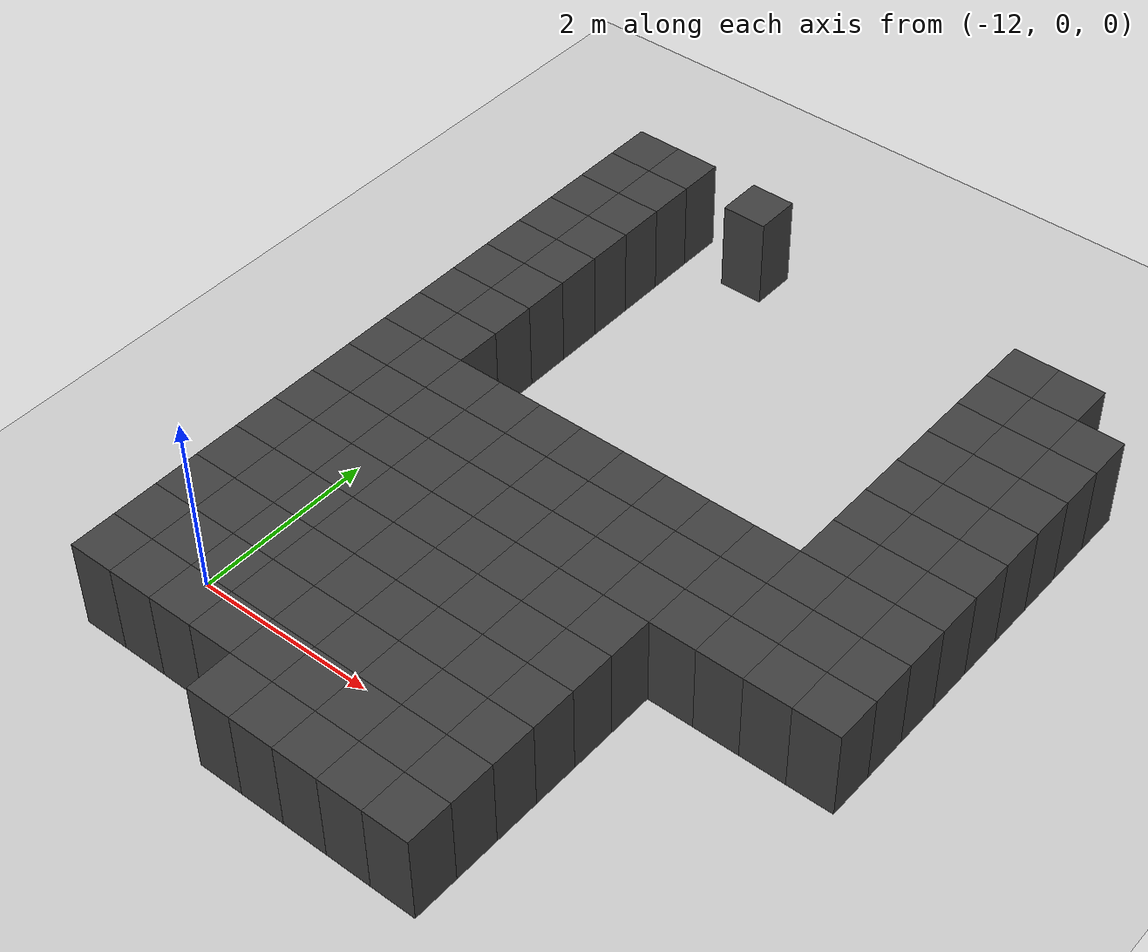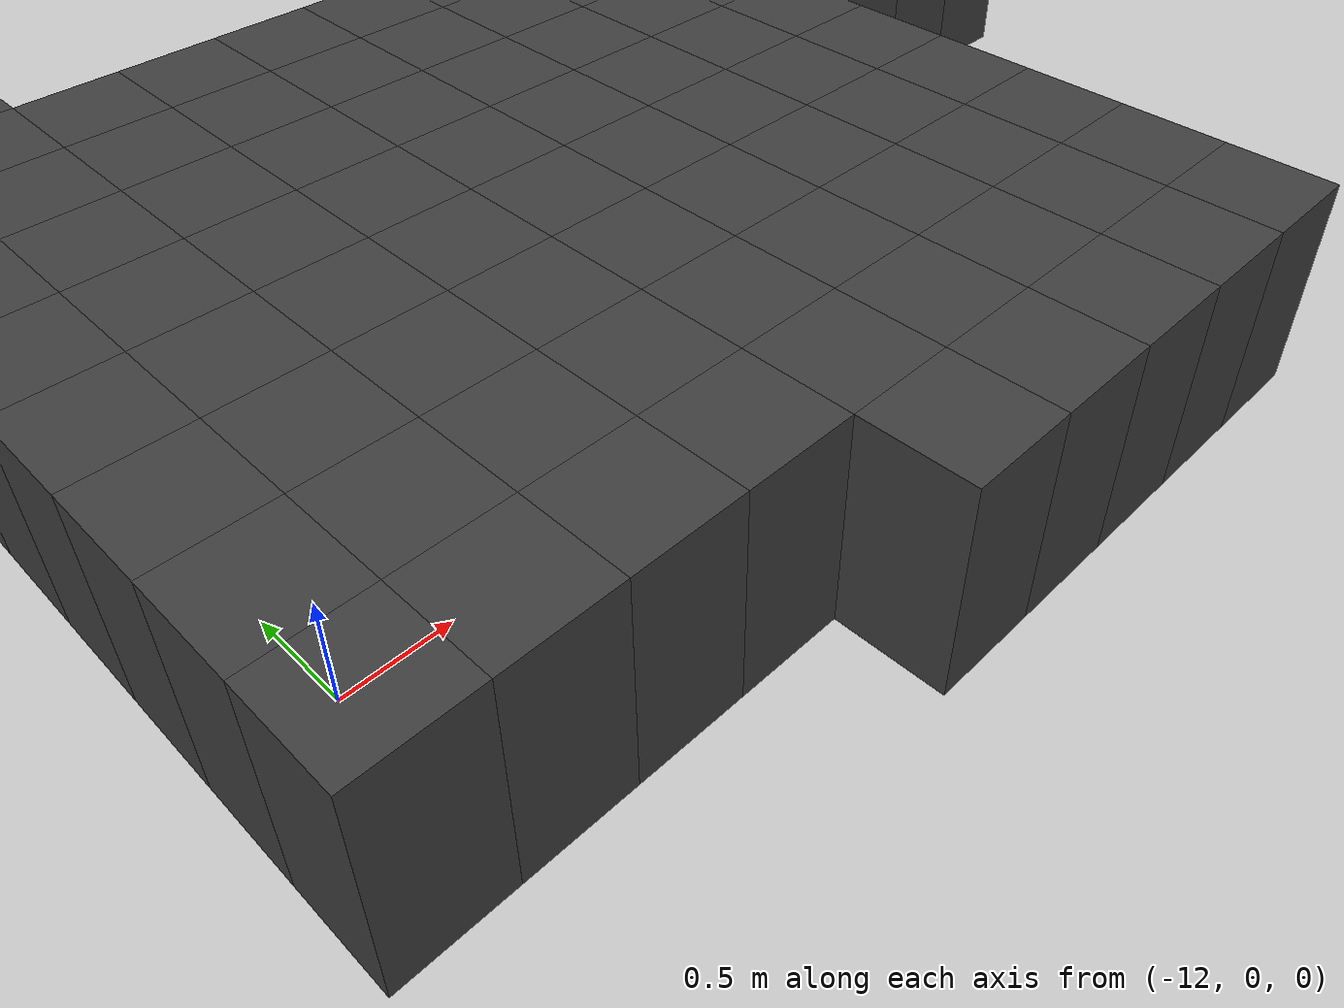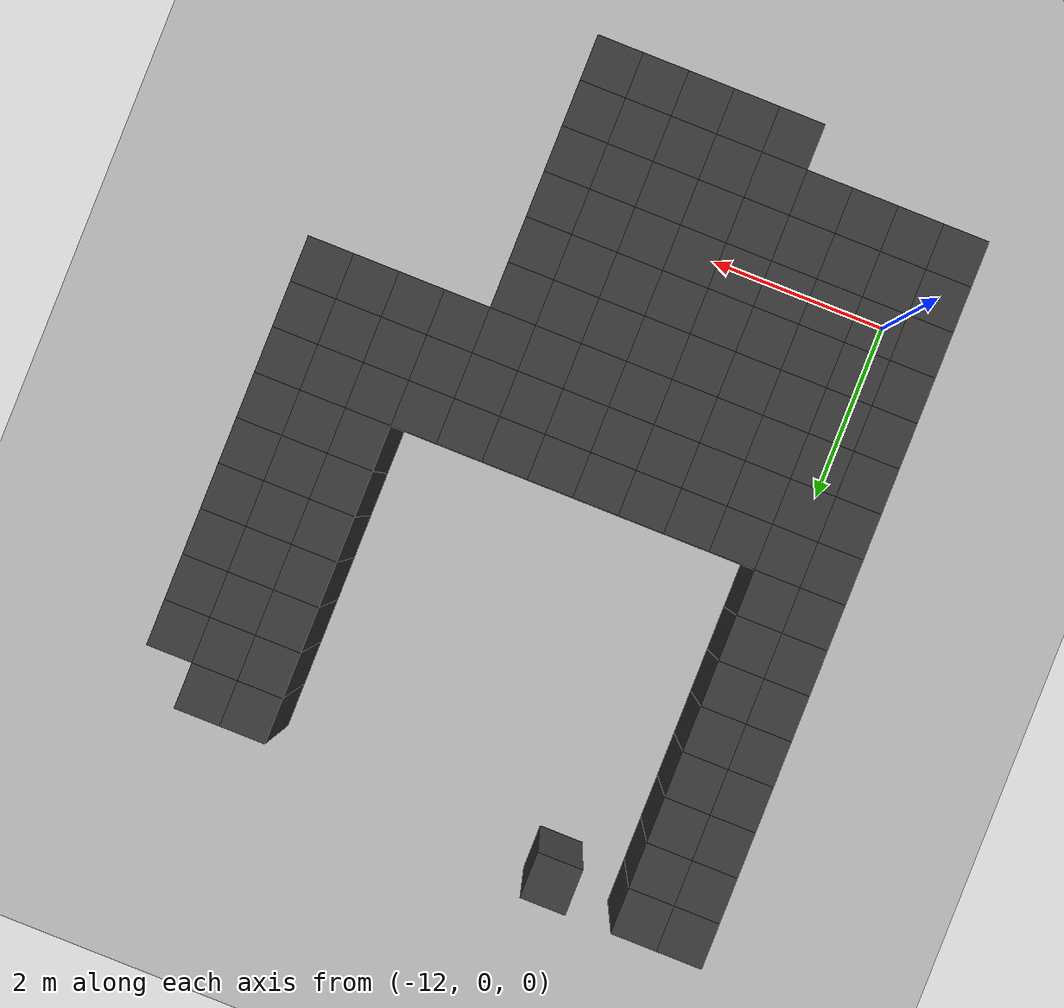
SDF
<sdf version="1.7">
 <world name="map_14190">
  <model name="ground_plane">
   <static>true</static>
   <link name="link">
    <collision name="collision">
     <geometry><plane><normal>0 0 1</normal><size>200 200</size></plane></geometry>
    </collision>
    <visual name="visual">
     <geometry><plane><normal>0 0 1</normal><size>200 200</size></plane></geometry>
     <material><ambient>0.8 0.8 0.8 1</ambient><diffuse>0.8 0.8 0.8 1</diffuse></material>
    </visual>
   </link>
  </model>
  <model name="maze_environment">
   <static>true</static>
   <link name="wall_424">
    <pose>-12.250 6.750 0.500 0 0 0</pose>
    <collision name="col"><geometry><box><size>0.5 0.5 1.0</size></box></geometry></collision>
    <visual name="vis">
     <geometry><box><size>0.5 0.5 1.0</size></box></geometry>
     <material><ambient>0.15 0.15 0.15 1</ambient><diffuse>0.25 0.25 0.25 1</diffuse></material>
    </visual>
   </link>
   <link name="wall_425">
    <pose>-11.750 6.750 0.500 0 0 0</pose>
    <collision name="col"><geometry><box><size>0.5 0.5 1.0</size></box></geometry></collision>
    <visual name="vis">
     <geometry><box><size>0.5 0.5 1.0</size></box></geometry>
     <material><ambient>0.15 0.15 0.15 1</ambient><diffuse>0.25 0.25 0.25 1</diffuse></material>
    </visual>
   </link>
   <link name="wall_426">
    <pose>-10.750 6.750 0.500 0 0 0</pose>
    <collision name="col"><geometry><box><size>0.5 0.5 1.0</size></box></geometry></collision>
    <visual name="vis">
     <geometry><box><size>0.5 0.5 1.0</size></box></geometry>
     <material><ambient>0.15 0.15 0.15 1</ambient><diffuse>0.25 0.25 0.25 1</diffuse></material>
    </visual>
   </link>
   <link name="wall_452">
    <pose>-12.250 6.250 0.500 0 0 0</pose>
    <collision name="col"><geometry><box><size>0.5 0.5 1.0</size></box></geometry></collision>
    <visual name="vis">
     <geometry><box><size>0.5 0.5 1.0</size></box></geometry>
     <material><ambient>0.15 0.15 0.15 1</ambient><diffuse>0.25 0.25 0.25 1</diffuse></material>
    </visual>
   </link>
   <link name="wall_453">
    <pose>-11.750 6.250 0.500 0 0 0</pose>
    <collision name="col"><geometry><box><size>0.5 0.5 1.0</size></box></geometry></collision>
    <visual name="vis">
     <geometry><box><size>0.5 0.5 1.0</size></box></geometry>
     <material><ambient>0.15 0.15 0.15 1</ambient><diffuse>0.25 0.25 0.25 1</diffuse></material>
    </visual>
   </link>
   <link name="wall_454">
    <pose>-7.250 6.250 0.500 0 0 0</pose>
    <collision name="col"><geometry><box><size>0.5 0.5 1.0</size></box></geometry></collision>
    <visual name="vis">
     <geometry><box><size>0.5 0.5 1.0</size></box></geometry>
     <material><ambient>0.15 0.15 0.15 1</ambient><diffuse>0.25 0.25 0.25 1</diffuse></material>
    </visual>
   </link>
   <link name="wall_455">
    <pose>-6.750 6.250 0.500 0 0 0</pose>
    <collision name="col"><geometry><box><size>0.5 0.5 1.0</size></box></geometry></collision>
    <visual name="vis">
     <geometry><box><size>0.5 0.5 1.0</size></box></geometry>
     <material><ambient>0.15 0.15 0.15 1</ambient><diffuse>0.25 0.25 0.25 1</diffuse></material>
    </visual>
   </link>
   <link name="wall_474">
    <pose>-12.250 5.750 0.500 0 0 0</pose>
    <collision name="col"><geometry><box><size>0.5 0.5 1.0</size></box></geometry></collision>
    <visual name="vis">
     <geometry><box><size>0.5 0.5 1.0</size></box></geometry>
     <material><ambient>0.15 0.15 0.15 1</ambient><diffuse>0.25 0.25 0.25 1</diffuse></material>
    </visual>
   </link>
   <link name="wall_475">
    <pose>-11.750 5.750 0.500 0 0 0</pose>
    <collision name="col"><geometry><box><size>0.5 0.5 1.0</size></box></geometry></collision>
    <visual name="vis">
     <geometry><box><size>0.5 0.5 1.0</size></box></geometry>
     <material><ambient>0.15 0.15 0.15 1</ambient><diffuse>0.25 0.25 0.25 1</diffuse></material>
    </visual>
   </link>
   <link name="wall_476">
    <pose>-7.250 5.750 0.500 0 0 0</pose>
    <collision name="col"><geometry><box><size>0.5 0.5 1.0</size></box></geometry></collision>
    <visual name="vis">
     <geometry><box><size>0.5 0.5 1.0</size></box></geometry>
     <material><ambient>0.15 0.15 0.15 1</ambient><diffuse>0.25 0.25 0.25 1</diffuse></material>
    </visual>
   </link>
   <link name="wall_477">
    <pose>-6.750 5.750 0.500 0 0 0</pose>
    <collision name="col"><geometry><box><size>0.5 0.5 1.0</size></box></geometry></collision>
    <visual name="vis">
     <geometry><box><size>0.5 0.5 1.0</size></box></geometry>
     <material><ambient>0.15 0.15 0.15 1</ambient><diffuse>0.25 0.25 0.25 1</diffuse></material>
    </visual>
   </link>
   <link name="wall_478">
    <pose>-6.250 5.750 0.500 0 0 0</pose>
    <collision name="col"><geometry><box><size>0.5 0.5 1.0</size></box></geometry></collision>
    <visual name="vis">
     <geometry><box><size>0.5 0.5 1.0</size></box></geometry>
     <material><ambient>0.15 0.15 0.15 1</ambient><diffuse>0.25 0.25 0.25 1</diffuse></material>
    </visual>
   </link>
   <link name="wall_498">
    <pose>-12.250 5.250 0.500 0 0 0</pose>
    <collision name="col"><geometry><box><size>0.5 0.5 1.0</size></box></geometry></collision>
    <visual name="vis">
     <geometry><box><size>0.5 0.5 1.0</size></box></geometry>
     <material><ambient>0.15 0.15 0.15 1</ambient><diffuse>0.25 0.25 0.25 1</diffuse></material>
    </visual>
   </link>
   <link name="wall_499">
    <pose>-11.750 5.250 0.500 0 0 0</pose>
    <collision name="col"><geometry><box><size>0.5 0.5 1.0</size></box></geometry></collision>
    <visual name="vis">
     <geometry><box><size>0.5 0.5 1.0</size></box></geometry>
     <material><ambient>0.15 0.15 0.15 1</ambient><diffuse>0.25 0.25 0.25 1</diffuse></material>
    </visual>
   </link>
   <link name="wall_500">
    <pose>-7.250 5.250 0.500 0 0 0</pose>
    <collision name="col"><geometry><box><size>0.5 0.5 1.0</size></box></geometry></collision>
    <visual name="vis">
     <geometry><box><size>0.5 0.5 1.0</size></box></geometry>
     <material><ambient>0.15 0.15 0.15 1</ambient><diffuse>0.25 0.25 0.25 1</diffuse></material>
    </visual>
   </link>
   <link name="wall_501">
    <pose>-6.750 5.250 0.500 0 0 0</pose>
    <collision name="col"><geometry><box><size>0.5 0.5 1.0</size></box></geometry></collision>
    <visual name="vis">
     <geometry><box><size>0.5 0.5 1.0</size></box></geometry>
     <material><ambient>0.15 0.15 0.15 1</ambient><diffuse>0.25 0.25 0.25 1</diffuse></material>
    </visual>
   </link>
   <link name="wall_502">
    <pose>-6.250 5.250 0.500 0 0 0</pose>
    <collision name="col"><geometry><box><size>0.5 0.5 1.0</size></box></geometry></collision>
    <visual name="vis">
     <geometry><box><size>0.5 0.5 1.0</size></box></geometry>
     <material><ambient>0.15 0.15 0.15 1</ambient><diffuse>0.25 0.25 0.25 1</diffuse></material>
    </visual>
   </link>
   <link name="wall_526">
    <pose>-12.250 4.750 0.500 0 0 0</pose>
    <collision name="col"><geometry><box><size>0.5 0.5 1.0</size></box></geometry></collision>
    <visual name="vis">
     <geometry><box><size>0.5 0.5 1.0</size></box></geometry>
     <material><ambient>0.15 0.15 0.15 1</ambient><diffuse>0.25 0.25 0.25 1</diffuse></material>
    </visual>
   </link>
   <link name="wall_527">
    <pose>-11.750 4.750 0.500 0 0 0</pose>
    <collision name="col"><geometry><box><size>0.5 0.5 1.0</size></box></geometry></collision>
    <visual name="vis">
     <geometry><box><size>0.5 0.5 1.0</size></box></geometry>
     <material><ambient>0.15 0.15 0.15 1</ambient><diffuse>0.25 0.25 0.25 1</diffuse></material>
    </visual>
   </link>
   <link name="wall_528">
    <pose>-7.250 4.750 0.500 0 0 0</pose>
    <collision name="col"><geometry><box><size>0.5 0.5 1.0</size></box></geometry></collision>
    <visual name="vis">
     <geometry><box><size>0.5 0.5 1.0</size></box></geometry>
     <material><ambient>0.15 0.15 0.15 1</ambient><diffuse>0.25 0.25 0.25 1</diffuse></material>
    </visual>
   </link>
   <link name="wall_529">
    <pose>-6.750 4.750 0.500 0 0 0</pose>
    <collision name="col"><geometry><box><size>0.5 0.5 1.0</size></box></geometry></collision>
    <visual name="vis">
     <geometry><box><size>0.5 0.5 1.0</size></box></geometry>
     <material><ambient>0.15 0.15 0.15 1</ambient><diffuse>0.25 0.25 0.25 1</diffuse></material>
    </visual>
   </link>
   <link name="wall_530">
    <pose>-6.250 4.750 0.500 0 0 0</pose>
    <collision name="col"><geometry><box><size>0.5 0.5 1.0</size></box></geometry></collision>
    <visual name="vis">
     <geometry><box><size>0.5 0.5 1.0</size></box></geometry>
     <material><ambient>0.15 0.15 0.15 1</ambient><diffuse>0.25 0.25 0.25 1</diffuse></material>
    </visual>
   </link>
   <link name="wall_563">
    <pose>-12.250 4.250 0.500 0 0 0</pose>
    <collision name="col"><geometry><box><size>0.5 0.5 1.0</size></box></geometry></collision>
    <visual name="vis">
     <geometry><box><size>0.5 0.5 1.0</size></box></geometry>
     <material><ambient>0.15 0.15 0.15 1</ambient><diffuse>0.25 0.25 0.25 1</diffuse></material>
    </visual>
   </link>
   <link name="wall_564">
    <pose>-11.750 4.250 0.500 0 0 0</pose>
    <collision name="col"><geometry><box><size>0.5 0.5 1.0</size></box></geometry></collision>
    <visual name="vis">
     <geometry><box><size>0.5 0.5 1.0</size></box></geometry>
     <material><ambient>0.15 0.15 0.15 1</ambient><diffuse>0.25 0.25 0.25 1</diffuse></material>
    </visual>
   </link>
   <link name="wall_565">
    <pose>-7.250 4.250 0.500 0 0 0</pose>
    <collision name="col"><geometry><box><size>0.5 0.5 1.0</size></box></geometry></collision>
    <visual name="vis">
     <geometry><box><size>0.5 0.5 1.0</size></box></geometry>
     <material><ambient>0.15 0.15 0.15 1</ambient><diffuse>0.25 0.25 0.25 1</diffuse></material>
    </visual>
   </link>
   <link name="wall_566">
    <pose>-6.750 4.250 0.500 0 0 0</pose>
    <collision name="col"><geometry><box><size>0.5 0.5 1.0</size></box></geometry></collision>
    <visual name="vis">
     <geometry><box><size>0.5 0.5 1.0</size></box></geometry>
     <material><ambient>0.15 0.15 0.15 1</ambient><diffuse>0.25 0.25 0.25 1</diffuse></material>
    </visual>
   </link>
   <link name="wall_567">
    <pose>-6.250 4.250 0.500 0 0 0</pose>
    <collision name="col"><geometry><box><size>0.5 0.5 1.0</size></box></geometry></collision>
    <visual name="vis">
     <geometry><box><size>0.5 0.5 1.0</size></box></geometry>
     <material><ambient>0.15 0.15 0.15 1</ambient><diffuse>0.25 0.25 0.25 1</diffuse></material>
    </visual>
   </link>
   <link name="wall_593">
    <pose>-12.250 3.750 0.500 0 0 0</pose>
    <collision name="col"><geometry><box><size>0.5 0.5 1.0</size></box></geometry></collision>
    <visual name="vis">
     <geometry><box><size>0.5 0.5 1.0</size></box></geometry>
     <material><ambient>0.15 0.15 0.15 1</ambient><diffuse>0.25 0.25 0.25 1</diffuse></material>
    </visual>
   </link>
   <link name="wall_594">
    <pose>-11.750 3.750 0.500 0 0 0</pose>
    <collision name="col"><geometry><box><size>0.5 0.5 1.0</size></box></geometry></collision>
    <visual name="vis">
     <geometry><box><size>0.5 0.5 1.0</size></box></geometry>
     <material><ambient>0.15 0.15 0.15 1</ambient><diffuse>0.25 0.25 0.25 1</diffuse></material>
    </visual>
   </link>
   <link name="wall_595">
    <pose>-7.250 3.750 0.500 0 0 0</pose>
    <collision name="col"><geometry><box><size>0.5 0.5 1.0</size></box></geometry></collision>
    <visual name="vis">
     <geometry><box><size>0.5 0.5 1.0</size></box></geometry>
     <material><ambient>0.15 0.15 0.15 1</ambient><diffuse>0.25 0.25 0.25 1</diffuse></material>
    </visual>
   </link>
   <link name="wall_596">
    <pose>-6.750 3.750 0.500 0 0 0</pose>
    <collision name="col"><geometry><box><size>0.5 0.5 1.0</size></box></geometry></collision>
    <visual name="vis">
     <geometry><box><size>0.5 0.5 1.0</size></box></geometry>
     <material><ambient>0.15 0.15 0.15 1</ambient><diffuse>0.25 0.25 0.25 1</diffuse></material>
    </visual>
   </link>
   <link name="wall_597">
    <pose>-6.250 3.750 0.500 0 0 0</pose>
    <collision name="col"><geometry><box><size>0.5 0.5 1.0</size></box></geometry></collision>
    <visual name="vis">
     <geometry><box><size>0.5 0.5 1.0</size></box></geometry>
     <material><ambient>0.15 0.15 0.15 1</ambient><diffuse>0.25 0.25 0.25 1</diffuse></material>
    </visual>
   </link>
   <link name="wall_626">
    <pose>-12.250 3.250 0.500 0 0 0</pose>
    <collision name="col"><geometry><box><size>0.5 0.5 1.0</size></box></geometry></collision>
    <visual name="vis">
     <geometry><box><size>0.5 0.5 1.0</size></box></geometry>
     <material><ambient>0.15 0.15 0.15 1</ambient><diffuse>0.25 0.25 0.25 1</diffuse></material>
    </visual>
   </link>
   <link name="wall_627">
    <pose>-11.750 3.250 0.500 0 0 0</pose>
    <collision name="col"><geometry><box><size>0.5 0.5 1.0</size></box></geometry></collision>
    <visual name="vis">
     <geometry><box><size>0.5 0.5 1.0</size></box></geometry>
     <material><ambient>0.15 0.15 0.15 1</ambient><diffuse>0.25 0.25 0.25 1</diffuse></material>
    </visual>
   </link>
   <link name="wall_628">
    <pose>-7.250 3.250 0.500 0 0 0</pose>
    <collision name="col"><geometry><box><size>0.5 0.5 1.0</size></box></geometry></collision>
    <visual name="vis">
     <geometry><box><size>0.5 0.5 1.0</size></box></geometry>
     <material><ambient>0.15 0.15 0.15 1</ambient><diffuse>0.25 0.25 0.25 1</diffuse></material>
    </visual>
   </link>
   <link name="wall_629">
    <pose>-6.750 3.250 0.500 0 0 0</pose>
    <collision name="col"><geometry><box><size>0.5 0.5 1.0</size></box></geometry></collision>
    <visual name="vis">
     <geometry><box><size>0.5 0.5 1.0</size></box></geometry>
     <material><ambient>0.15 0.15 0.15 1</ambient><diffuse>0.25 0.25 0.25 1</diffuse></material>
    </visual>
   </link>
   <link name="wall_630">
    <pose>-6.250 3.250 0.500 0 0 0</pose>
    <collision name="col"><geometry><box><size>0.5 0.5 1.0</size></box></geometry></collision>
    <visual name="vis">
     <geometry><box><size>0.5 0.5 1.0</size></box></geometry>
     <material><ambient>0.15 0.15 0.15 1</ambient><diffuse>0.25 0.25 0.25 1</diffuse></material>
    </visual>
   </link>
   <link name="wall_659">
    <pose>-12.250 2.750 0.500 0 0 0</pose>
    <collision name="col"><geometry><box><size>0.5 0.5 1.0</size></box></geometry></collision>
    <visual name="vis">
     <geometry><box><size>0.5 0.5 1.0</size></box></geometry>
     <material><ambient>0.15 0.15 0.15 1</ambient><diffuse>0.25 0.25 0.25 1</diffuse></material>
    </visual>
   </link>
   <link name="wall_660">
    <pose>-11.750 2.750 0.500 0 0 0</pose>
    <collision name="col"><geometry><box><size>0.5 0.5 1.0</size></box></geometry></collision>
    <visual name="vis">
     <geometry><box><size>0.5 0.5 1.0</size></box></geometry>
     <material><ambient>0.15 0.15 0.15 1</ambient><diffuse>0.25 0.25 0.25 1</diffuse></material>
    </visual>
   </link>
   <link name="wall_661">
    <pose>-11.250 2.750 0.500 0 0 0</pose>
    <collision name="col"><geometry><box><size>0.5 0.5 1.0</size></box></geometry></collision>
    <visual name="vis">
     <geometry><box><size>0.5 0.5 1.0</size></box></geometry>
     <material><ambient>0.15 0.15 0.15 1</ambient><diffuse>0.25 0.25 0.25 1</diffuse></material>
    </visual>
   </link>
   <link name="wall_662">
    <pose>-10.750 2.750 0.500 0 0 0</pose>
    <collision name="col"><geometry><box><size>0.5 0.5 1.0</size></box></geometry></collision>
    <visual name="vis">
     <geometry><box><size>0.5 0.5 1.0</size></box></geometry>
     <material><ambient>0.15 0.15 0.15 1</ambient><diffuse>0.25 0.25 0.25 1</diffuse></material>
    </visual>
   </link>
   <link name="wall_663">
    <pose>-10.250 2.750 0.500 0 0 0</pose>
    <collision name="col"><geometry><box><size>0.5 0.5 1.0</size></box></geometry></collision>
    <visual name="vis">
     <geometry><box><size>0.5 0.5 1.0</size></box></geometry>
     <material><ambient>0.15 0.15 0.15 1</ambient><diffuse>0.25 0.25 0.25 1</diffuse></material>
    </visual>
   </link>
   <link name="wall_664">
    <pose>-9.750 2.750 0.500 0 0 0</pose>
    <collision name="col"><geometry><box><size>0.5 0.5 1.0</size></box></geometry></collision>
    <visual name="vis">
     <geometry><box><size>0.5 0.5 1.0</size></box></geometry>
     <material><ambient>0.15 0.15 0.15 1</ambient><diffuse>0.25 0.25 0.25 1</diffuse></material>
    </visual>
   </link>
   <link name="wall_665">
    <pose>-9.250 2.750 0.500 0 0 0</pose>
    <collision name="col"><geometry><box><size>0.5 0.5 1.0</size></box></geometry></collision>
    <visual name="vis">
     <geometry><box><size>0.5 0.5 1.0</size></box></geometry>
     <material><ambient>0.15 0.15 0.15 1</ambient><diffuse>0.25 0.25 0.25 1</diffuse></material>
    </visual>
   </link>
   <link name="wall_666">
    <pose>-8.750 2.750 0.500 0 0 0</pose>
    <collision name="col"><geometry><box><size>0.5 0.5 1.0</size></box></geometry></collision>
    <visual name="vis">
     <geometry><box><size>0.5 0.5 1.0</size></box></geometry>
     <material><ambient>0.15 0.15 0.15 1</ambient><diffuse>0.25 0.25 0.25 1</diffuse></material>
    </visual>
   </link>
   <link name="wall_667">
    <pose>-8.250 2.750 0.500 0 0 0</pose>
    <collision name="col"><geometry><box><size>0.5 0.5 1.0</size></box></geometry></collision>
    <visual name="vis">
     <geometry><box><size>0.5 0.5 1.0</size></box></geometry>
     <material><ambient>0.15 0.15 0.15 1</ambient><diffuse>0.25 0.25 0.25 1</diffuse></material>
    </visual>
   </link>
   <link name="wall_668">
    <pose>-7.750 2.750 0.500 0 0 0</pose>
    <collision name="col"><geometry><box><size>0.5 0.5 1.0</size></box></geometry></collision>
    <visual name="vis">
     <geometry><box><size>0.5 0.5 1.0</size></box></geometry>
     <material><ambient>0.15 0.15 0.15 1</ambient><diffuse>0.25 0.25 0.25 1</diffuse></material>
    </visual>
   </link>
   <link name="wall_669">
    <pose>-7.250 2.750 0.500 0 0 0</pose>
    <collision name="col"><geometry><box><size>0.5 0.5 1.0</size></box></geometry></collision>
    <visual name="vis">
     <geometry><box><size>0.5 0.5 1.0</size></box></geometry>
     <material><ambient>0.15 0.15 0.15 1</ambient><diffuse>0.25 0.25 0.25 1</diffuse></material>
    </visual>
   </link>
   <link name="wall_670">
    <pose>-6.750 2.750 0.500 0 0 0</pose>
    <collision name="col"><geometry><box><size>0.5 0.5 1.0</size></box></geometry></collision>
    <visual name="vis">
     <geometry><box><size>0.5 0.5 1.0</size></box></geometry>
     <material><ambient>0.15 0.15 0.15 1</ambient><diffuse>0.25 0.25 0.25 1</diffuse></material>
    </visual>
   </link>
   <link name="wall_671">
    <pose>-6.250 2.750 0.500 0 0 0</pose>
    <collision name="col"><geometry><box><size>0.5 0.5 1.0</size></box></geometry></collision>
    <visual name="vis">
     <geometry><box><size>0.5 0.5 1.0</size></box></geometry>
     <material><ambient>0.15 0.15 0.15 1</ambient><diffuse>0.25 0.25 0.25 1</diffuse></material>
    </visual>
   </link>
   <link name="wall_701">
    <pose>-12.250 2.250 0.500 0 0 0</pose>
    <collision name="col"><geometry><box><size>0.5 0.5 1.0</size></box></geometry></collision>
    <visual name="vis">
     <geometry><box><size>0.5 0.5 1.0</size></box></geometry>
     <material><ambient>0.15 0.15 0.15 1</ambient><diffuse>0.25 0.25 0.25 1</diffuse></material>
    </visual>
   </link>
   <link name="wall_702">
    <pose>-11.750 2.250 0.500 0 0 0</pose>
    <collision name="col"><geometry><box><size>0.5 0.5 1.0</size></box></geometry></collision>
    <visual name="vis">
     <geometry><box><size>0.5 0.5 1.0</size></box></geometry>
     <material><ambient>0.15 0.15 0.15 1</ambient><diffuse>0.25 0.25 0.25 1</diffuse></material>
    </visual>
   </link>
   <link name="wall_703">
    <pose>-11.250 2.250 0.500 0 0 0</pose>
    <collision name="col"><geometry><box><size>0.5 0.5 1.0</size></box></geometry></collision>
    <visual name="vis">
     <geometry><box><size>0.5 0.5 1.0</size></box></geometry>
     <material><ambient>0.15 0.15 0.15 1</ambient><diffuse>0.25 0.25 0.25 1</diffuse></material>
    </visual>
   </link>
   <link name="wall_704">
    <pose>-10.750 2.250 0.500 0 0 0</pose>
    <collision name="col"><geometry><box><size>0.5 0.5 1.0</size></box></geometry></collision>
    <visual name="vis">
     <geometry><box><size>0.5 0.5 1.0</size></box></geometry>
     <material><ambient>0.15 0.15 0.15 1</ambient><diffuse>0.25 0.25 0.25 1</diffuse></material>
    </visual>
   </link>
   <link name="wall_705">
    <pose>-10.250 2.250 0.500 0 0 0</pose>
    <collision name="col"><geometry><box><size>0.5 0.5 1.0</size></box></geometry></collision>
    <visual name="vis">
     <geometry><box><size>0.5 0.5 1.0</size></box></geometry>
     <material><ambient>0.15 0.15 0.15 1</ambient><diffuse>0.25 0.25 0.25 1</diffuse></material>
    </visual>
   </link>
   <link name="wall_706">
    <pose>-9.750 2.250 0.500 0 0 0</pose>
    <collision name="col"><geometry><box><size>0.5 0.5 1.0</size></box></geometry></collision>
    <visual name="vis">
     <geometry><box><size>0.5 0.5 1.0</size></box></geometry>
     <material><ambient>0.15 0.15 0.15 1</ambient><diffuse>0.25 0.25 0.25 1</diffuse></material>
    </visual>
   </link>
   <link name="wall_707">
    <pose>-9.250 2.250 0.500 0 0 0</pose>
    <collision name="col"><geometry><box><size>0.5 0.5 1.0</size></box></geometry></collision>
    <visual name="vis">
     <geometry><box><size>0.5 0.5 1.0</size></box></geometry>
     <material><ambient>0.15 0.15 0.15 1</ambient><diffuse>0.25 0.25 0.25 1</diffuse></material>
    </visual>
   </link>
   <link name="wall_708">
    <pose>-8.750 2.250 0.500 0 0 0</pose>
    <collision name="col"><geometry><box><size>0.5 0.5 1.0</size></box></geometry></collision>
    <visual name="vis">
     <geometry><box><size>0.5 0.5 1.0</size></box></geometry>
     <material><ambient>0.15 0.15 0.15 1</ambient><diffuse>0.25 0.25 0.25 1</diffuse></material>
    </visual>
   </link>
   <link name="wall_709">
    <pose>-8.250 2.250 0.500 0 0 0</pose>
    <collision name="col"><geometry><box><size>0.5 0.5 1.0</size></box></geometry></collision>
    <visual name="vis">
     <geometry><box><size>0.5 0.5 1.0</size></box></geometry>
     <material><ambient>0.15 0.15 0.15 1</ambient><diffuse>0.25 0.25 0.25 1</diffuse></material>
    </visual>
   </link>
   <link name="wall_710">
    <pose>-7.750 2.250 0.500 0 0 0</pose>
    <collision name="col"><geometry><box><size>0.5 0.5 1.0</size></box></geometry></collision>
    <visual name="vis">
     <geometry><box><size>0.5 0.5 1.0</size></box></geometry>
     <material><ambient>0.15 0.15 0.15 1</ambient><diffuse>0.25 0.25 0.25 1</diffuse></material>
    </visual>
   </link>
   <link name="wall_711">
    <pose>-7.250 2.250 0.500 0 0 0</pose>
    <collision name="col"><geometry><box><size>0.5 0.5 1.0</size></box></geometry></collision>
    <visual name="vis">
     <geometry><box><size>0.5 0.5 1.0</size></box></geometry>
     <material><ambient>0.15 0.15 0.15 1</ambient><diffuse>0.25 0.25 0.25 1</diffuse></material>
    </visual>
   </link>
   <link name="wall_712">
    <pose>-6.750 2.250 0.500 0 0 0</pose>
    <collision name="col"><geometry><box><size>0.5 0.5 1.0</size></box></geometry></collision>
    <visual name="vis">
     <geometry><box><size>0.5 0.5 1.0</size></box></geometry>
     <material><ambient>0.15 0.15 0.15 1</ambient><diffuse>0.25 0.25 0.25 1</diffuse></material>
    </visual>
   </link>
   <link name="wall_713">
    <pose>-6.250 2.250 0.500 0 0 0</pose>
    <collision name="col"><geometry><box><size>0.5 0.5 1.0</size></box></geometry></collision>
    <visual name="vis">
     <geometry><box><size>0.5 0.5 1.0</size></box></geometry>
     <material><ambient>0.15 0.15 0.15 1</ambient><diffuse>0.25 0.25 0.25 1</diffuse></material>
    </visual>
   </link>
   <link name="wall_743">
    <pose>-12.250 1.750 0.500 0 0 0</pose>
    <collision name="col"><geometry><box><size>0.5 0.5 1.0</size></box></geometry></collision>
    <visual name="vis">
     <geometry><box><size>0.5 0.5 1.0</size></box></geometry>
     <material><ambient>0.15 0.15 0.15 1</ambient><diffuse>0.25 0.25 0.25 1</diffuse></material>
    </visual>
   </link>
   <link name="wall_744">
    <pose>-11.750 1.750 0.500 0 0 0</pose>
    <collision name="col"><geometry><box><size>0.5 0.5 1.0</size></box></geometry></collision>
    <visual name="vis">
     <geometry><box><size>0.5 0.5 1.0</size></box></geometry>
     <material><ambient>0.15 0.15 0.15 1</ambient><diffuse>0.25 0.25 0.25 1</diffuse></material>
    </visual>
   </link>
   <link name="wall_745">
    <pose>-11.250 1.750 0.500 0 0 0</pose>
    <collision name="col"><geometry><box><size>0.5 0.5 1.0</size></box></geometry></collision>
    <visual name="vis">
     <geometry><box><size>0.5 0.5 1.0</size></box></geometry>
     <material><ambient>0.15 0.15 0.15 1</ambient><diffuse>0.25 0.25 0.25 1</diffuse></material>
    </visual>
   </link>
   <link name="wall_746">
    <pose>-10.750 1.750 0.500 0 0 0</pose>
    <collision name="col"><geometry><box><size>0.5 0.5 1.0</size></box></geometry></collision>
    <visual name="vis">
     <geometry><box><size>0.5 0.5 1.0</size></box></geometry>
     <material><ambient>0.15 0.15 0.15 1</ambient><diffuse>0.25 0.25 0.25 1</diffuse></material>
    </visual>
   </link>
   <link name="wall_747">
    <pose>-10.250 1.750 0.500 0 0 0</pose>
    <collision name="col"><geometry><box><size>0.5 0.5 1.0</size></box></geometry></collision>
    <visual name="vis">
     <geometry><box><size>0.5 0.5 1.0</size></box></geometry>
     <material><ambient>0.15 0.15 0.15 1</ambient><diffuse>0.25 0.25 0.25 1</diffuse></material>
    </visual>
   </link>
   <link name="wall_748">
    <pose>-9.750 1.750 0.500 0 0 0</pose>
    <collision name="col"><geometry><box><size>0.5 0.5 1.0</size></box></geometry></collision>
    <visual name="vis">
     <geometry><box><size>0.5 0.5 1.0</size></box></geometry>
     <material><ambient>0.15 0.15 0.15 1</ambient><diffuse>0.25 0.25 0.25 1</diffuse></material>
    </visual>
   </link>
   <link name="wall_749">
    <pose>-9.250 1.750 0.500 0 0 0</pose>
    <collision name="col"><geometry><box><size>0.5 0.5 1.0</size></box></geometry></collision>
    <visual name="vis">
     <geometry><box><size>0.5 0.5 1.0</size></box></geometry>
     <material><ambient>0.15 0.15 0.15 1</ambient><diffuse>0.25 0.25 0.25 1</diffuse></material>
    </visual>
   </link>
   <link name="wall_750">
    <pose>-8.750 1.750 0.500 0 0 0</pose>
    <collision name="col"><geometry><box><size>0.5 0.5 1.0</size></box></geometry></collision>
    <visual name="vis">
     <geometry><box><size>0.5 0.5 1.0</size></box></geometry>
     <material><ambient>0.15 0.15 0.15 1</ambient><diffuse>0.25 0.25 0.25 1</diffuse></material>
    </visual>
   </link>
   <link name="wall_751">
    <pose>-8.250 1.750 0.500 0 0 0</pose>
    <collision name="col"><geometry><box><size>0.5 0.5 1.0</size></box></geometry></collision>
    <visual name="vis">
     <geometry><box><size>0.5 0.5 1.0</size></box></geometry>
     <material><ambient>0.15 0.15 0.15 1</ambient><diffuse>0.25 0.25 0.25 1</diffuse></material>
    </visual>
   </link>
   <link name="wall_752">
    <pose>-7.750 1.750 0.500 0 0 0</pose>
    <collision name="col"><geometry><box><size>0.5 0.5 1.0</size></box></geometry></collision>
    <visual name="vis">
     <geometry><box><size>0.5 0.5 1.0</size></box></geometry>
     <material><ambient>0.15 0.15 0.15 1</ambient><diffuse>0.25 0.25 0.25 1</diffuse></material>
    </visual>
   </link>
   <link name="wall_753">
    <pose>-7.250 1.750 0.500 0 0 0</pose>
    <collision name="col"><geometry><box><size>0.5 0.5 1.0</size></box></geometry></collision>
    <visual name="vis">
     <geometry><box><size>0.5 0.5 1.0</size></box></geometry>
     <material><ambient>0.15 0.15 0.15 1</ambient><diffuse>0.25 0.25 0.25 1</diffuse></material>
    </visual>
   </link>
   <link name="wall_754">
    <pose>-6.750 1.750 0.500 0 0 0</pose>
    <collision name="col"><geometry><box><size>0.5 0.5 1.0</size></box></geometry></collision>
    <visual name="vis">
     <geometry><box><size>0.5 0.5 1.0</size></box></geometry>
     <material><ambient>0.15 0.15 0.15 1</ambient><diffuse>0.25 0.25 0.25 1</diffuse></material>
    </visual>
   </link>
   <link name="wall_755">
    <pose>-6.250 1.750 0.500 0 0 0</pose>
    <collision name="col"><geometry><box><size>0.5 0.5 1.0</size></box></geometry></collision>
    <visual name="vis">
     <geometry><box><size>0.5 0.5 1.0</size></box></geometry>
     <material><ambient>0.15 0.15 0.15 1</ambient><diffuse>0.25 0.25 0.25 1</diffuse></material>
    </visual>
   </link>
   <link name="wall_785">
    <pose>-12.250 1.250 0.500 0 0 0</pose>
    <collision name="col"><geometry><box><size>0.5 0.5 1.0</size></box></geometry></collision>
    <visual name="vis">
     <geometry><box><size>0.5 0.5 1.0</size></box></geometry>
     <material><ambient>0.15 0.15 0.15 1</ambient><diffuse>0.25 0.25 0.25 1</diffuse></material>
    </visual>
   </link>
   <link name="wall_786">
    <pose>-11.750 1.250 0.500 0 0 0</pose>
    <collision name="col"><geometry><box><size>0.5 0.5 1.0</size></box></geometry></collision>
    <visual name="vis">
     <geometry><box><size>0.5 0.5 1.0</size></box></geometry>
     <material><ambient>0.15 0.15 0.15 1</ambient><diffuse>0.25 0.25 0.25 1</diffuse></material>
    </visual>
   </link>
   <link name="wall_787">
    <pose>-11.250 1.250 0.500 0 0 0</pose>
    <collision name="col"><geometry><box><size>0.5 0.5 1.0</size></box></geometry></collision>
    <visual name="vis">
     <geometry><box><size>0.5 0.5 1.0</size></box></geometry>
     <material><ambient>0.15 0.15 0.15 1</ambient><diffuse>0.25 0.25 0.25 1</diffuse></material>
    </visual>
   </link>
   <link name="wall_788">
    <pose>-10.750 1.250 0.500 0 0 0</pose>
    <collision name="col"><geometry><box><size>0.5 0.5 1.0</size></box></geometry></collision>
    <visual name="vis">
     <geometry><box><size>0.5 0.5 1.0</size></box></geometry>
     <material><ambient>0.15 0.15 0.15 1</ambient><diffuse>0.25 0.25 0.25 1</diffuse></material>
    </visual>
   </link>
   <link name="wall_789">
    <pose>-10.250 1.250 0.500 0 0 0</pose>
    <collision name="col"><geometry><box><size>0.5 0.5 1.0</size></box></geometry></collision>
    <visual name="vis">
     <geometry><box><size>0.5 0.5 1.0</size></box></geometry>
     <material><ambient>0.15 0.15 0.15 1</ambient><diffuse>0.25 0.25 0.25 1</diffuse></material>
    </visual>
   </link>
   <link name="wall_790">
    <pose>-9.750 1.250 0.500 0 0 0</pose>
    <collision name="col"><geometry><box><size>0.5 0.5 1.0</size></box></geometry></collision>
    <visual name="vis">
     <geometry><box><size>0.5 0.5 1.0</size></box></geometry>
     <material><ambient>0.15 0.15 0.15 1</ambient><diffuse>0.25 0.25 0.25 1</diffuse></material>
    </visual>
   </link>
   <link name="wall_791">
    <pose>-9.250 1.250 0.500 0 0 0</pose>
    <collision name="col"><geometry><box><size>0.5 0.5 1.0</size></box></geometry></collision>
    <visual name="vis">
     <geometry><box><size>0.5 0.5 1.0</size></box></geometry>
     <material><ambient>0.15 0.15 0.15 1</ambient><diffuse>0.25 0.25 0.25 1</diffuse></material>
    </visual>
   </link>
   <link name="wall_792">
    <pose>-8.750 1.250 0.500 0 0 0</pose>
    <collision name="col"><geometry><box><size>0.5 0.5 1.0</size></box></geometry></collision>
    <visual name="vis">
     <geometry><box><size>0.5 0.5 1.0</size></box></geometry>
     <material><ambient>0.15 0.15 0.15 1</ambient><diffuse>0.25 0.25 0.25 1</diffuse></material>
    </visual>
   </link>
   <link name="wall_793">
    <pose>-8.250 1.250 0.500 0 0 0</pose>
    <collision name="col"><geometry><box><size>0.5 0.5 1.0</size></box></geometry></collision>
    <visual name="vis">
     <geometry><box><size>0.5 0.5 1.0</size></box></geometry>
     <material><ambient>0.15 0.15 0.15 1</ambient><diffuse>0.25 0.25 0.25 1</diffuse></material>
    </visual>
   </link>
   <link name="wall_819">
    <pose>-12.250 0.750 0.500 0 0 0</pose>
    <collision name="col"><geometry><box><size>0.5 0.5 1.0</size></box></geometry></collision>
    <visual name="vis">
     <geometry><box><size>0.5 0.5 1.0</size></box></geometry>
     <material><ambient>0.15 0.15 0.15 1</ambient><diffuse>0.25 0.25 0.25 1</diffuse></material>
    </visual>
   </link>
   <link name="wall_820">
    <pose>-11.750 0.750 0.500 0 0 0</pose>
    <collision name="col"><geometry><box><size>0.5 0.5 1.0</size></box></geometry></collision>
    <visual name="vis">
     <geometry><box><size>0.5 0.5 1.0</size></box></geometry>
     <material><ambient>0.15 0.15 0.15 1</ambient><diffuse>0.25 0.25 0.25 1</diffuse></material>
    </visual>
   </link>
   <link name="wall_821">
    <pose>-11.250 0.750 0.500 0 0 0</pose>
    <collision name="col"><geometry><box><size>0.5 0.5 1.0</size></box></geometry></collision>
    <visual name="vis">
     <geometry><box><size>0.5 0.5 1.0</size></box></geometry>
     <material><ambient>0.15 0.15 0.15 1</ambient><diffuse>0.25 0.25 0.25 1</diffuse></material>
    </visual>
   </link>
   <link name="wall_822">
    <pose>-10.750 0.750 0.500 0 0 0</pose>
    <collision name="col"><geometry><box><size>0.5 0.5 1.0</size></box></geometry></collision>
    <visual name="vis">
     <geometry><box><size>0.5 0.5 1.0</size></box></geometry>
     <material><ambient>0.15 0.15 0.15 1</ambient><diffuse>0.25 0.25 0.25 1</diffuse></material>
    </visual>
   </link>
   <link name="wall_823">
    <pose>-10.250 0.750 0.500 0 0 0</pose>
    <collision name="col"><geometry><box><size>0.5 0.5 1.0</size></box></geometry></collision>
    <visual name="vis">
     <geometry><box><size>0.5 0.5 1.0</size></box></geometry>
     <material><ambient>0.15 0.15 0.15 1</ambient><diffuse>0.25 0.25 0.25 1</diffuse></material>
    </visual>
   </link>
   <link name="wall_824">
    <pose>-9.750 0.750 0.500 0 0 0</pose>
    <collision name="col"><geometry><box><size>0.5 0.5 1.0</size></box></geometry></collision>
    <visual name="vis">
     <geometry><box><size>0.5 0.5 1.0</size></box></geometry>
     <material><ambient>0.15 0.15 0.15 1</ambient><diffuse>0.25 0.25 0.25 1</diffuse></material>
    </visual>
   </link>
   <link name="wall_825">
    <pose>-9.250 0.750 0.500 0 0 0</pose>
    <collision name="col"><geometry><box><size>0.5 0.5 1.0</size></box></geometry></collision>
    <visual name="vis">
     <geometry><box><size>0.5 0.5 1.0</size></box></geometry>
     <material><ambient>0.15 0.15 0.15 1</ambient><diffuse>0.25 0.25 0.25 1</diffuse></material>
    </visual>
   </link>
   <link name="wall_826">
    <pose>-8.750 0.750 0.500 0 0 0</pose>
    <collision name="col"><geometry><box><size>0.5 0.5 1.0</size></box></geometry></collision>
    <visual name="vis">
     <geometry><box><size>0.5 0.5 1.0</size></box></geometry>
     <material><ambient>0.15 0.15 0.15 1</ambient><diffuse>0.25 0.25 0.25 1</diffuse></material>
    </visual>
   </link>
   <link name="wall_827">
    <pose>-8.250 0.750 0.500 0 0 0</pose>
    <collision name="col"><geometry><box><size>0.5 0.5 1.0</size></box></geometry></collision>
    <visual name="vis">
     <geometry><box><size>0.5 0.5 1.0</size></box></geometry>
     <material><ambient>0.15 0.15 0.15 1</ambient><diffuse>0.25 0.25 0.25 1</diffuse></material>
    </visual>
   </link>
   <link name="wall_853">
    <pose>-12.250 0.250 0.500 0 0 0</pose>
    <collision name="col"><geometry><box><size>0.5 0.5 1.0</size></box></geometry></collision>
    <visual name="vis">
     <geometry><box><size>0.5 0.5 1.0</size></box></geometry>
     <material><ambient>0.15 0.15 0.15 1</ambient><diffuse>0.25 0.25 0.25 1</diffuse></material>
    </visual>
   </link>
   <link name="wall_854">
    <pose>-11.750 0.250 0.500 0 0 0</pose>
    <collision name="col"><geometry><box><size>0.5 0.5 1.0</size></box></geometry></collision>
    <visual name="vis">
     <geometry><box><size>0.5 0.5 1.0</size></box></geometry>
     <material><ambient>0.15 0.15 0.15 1</ambient><diffuse>0.25 0.25 0.25 1</diffuse></material>
    </visual>
   </link>
   <link name="wall_855">
    <pose>-11.250 0.250 0.500 0 0 0</pose>
    <collision name="col"><geometry><box><size>0.5 0.5 1.0</size></box></geometry></collision>
    <visual name="vis">
     <geometry><box><size>0.5 0.5 1.0</size></box></geometry>
     <material><ambient>0.15 0.15 0.15 1</ambient><diffuse>0.25 0.25 0.25 1</diffuse></material>
    </visual>
   </link>
   <link name="wall_856">
    <pose>-10.750 0.250 0.500 0 0 0</pose>
    <collision name="col"><geometry><box><size>0.5 0.5 1.0</size></box></geometry></collision>
    <visual name="vis">
     <geometry><box><size>0.5 0.5 1.0</size></box></geometry>
     <material><ambient>0.15 0.15 0.15 1</ambient><diffuse>0.25 0.25 0.25 1</diffuse></material>
    </visual>
   </link>
   <link name="wall_857">
    <pose>-10.250 0.250 0.500 0 0 0</pose>
    <collision name="col"><geometry><box><size>0.5 0.5 1.0</size></box></geometry></collision>
    <visual name="vis">
     <geometry><box><size>0.5 0.5 1.0</size></box></geometry>
     <material><ambient>0.15 0.15 0.15 1</ambient><diffuse>0.25 0.25 0.25 1</diffuse></material>
    </visual>
   </link>
   <link name="wall_858">
    <pose>-9.750 0.250 0.500 0 0 0</pose>
    <collision name="col"><geometry><box><size>0.5 0.5 1.0</size></box></geometry></collision>
    <visual name="vis">
     <geometry><box><size>0.5 0.5 1.0</size></box></geometry>
     <material><ambient>0.15 0.15 0.15 1</ambient><diffuse>0.25 0.25 0.25 1</diffuse></material>
    </visual>
   </link>
   <link name="wall_859">
    <pose>-9.250 0.250 0.500 0 0 0</pose>
    <collision name="col"><geometry><box><size>0.5 0.5 1.0</size></box></geometry></collision>
    <visual name="vis">
     <geometry><box><size>0.5 0.5 1.0</size></box></geometry>
     <material><ambient>0.15 0.15 0.15 1</ambient><diffuse>0.25 0.25 0.25 1</diffuse></material>
    </visual>
   </link>
   <link name="wall_860">
    <pose>-8.750 0.250 0.500 0 0 0</pose>
    <collision name="col"><geometry><box><size>0.5 0.5 1.0</size></box></geometry></collision>
    <visual name="vis">
     <geometry><box><size>0.5 0.5 1.0</size></box></geometry>
     <material><ambient>0.15 0.15 0.15 1</ambient><diffuse>0.25 0.25 0.25 1</diffuse></material>
    </visual>
   </link>
   <link name="wall_861">
    <pose>-8.250 0.250 0.500 0 0 0</pose>
    <collision name="col"><geometry><box><size>0.5 0.5 1.0</size></box></geometry></collision>
    <visual name="vis">
     <geometry><box><size>0.5 0.5 1.0</size></box></geometry>
     <material><ambient>0.15 0.15 0.15 1</ambient><diffuse>0.25 0.25 0.25 1</diffuse></material>
    </visual>
   </link>
   <link name="wall_887">
    <pose>-12.250 -0.250 0.500 0 0 0</pose>
    <collision name="col"><geometry><box><size>0.5 0.5 1.0</size></box></geometry></collision>
    <visual name="vis">
     <geometry><box><size>0.5 0.5 1.0</size></box></geometry>
     <material><ambient>0.15 0.15 0.15 1</ambient><diffuse>0.25 0.25 0.25 1</diffuse></material>
    </visual>
   </link>
   <link name="wall_888">
    <pose>-11.750 -0.250 0.500 0 0 0</pose>
    <collision name="col"><geometry><box><size>0.5 0.5 1.0</size></box></geometry></collision>
    <visual name="vis">
     <geometry><box><size>0.5 0.5 1.0</size></box></geometry>
     <material><ambient>0.15 0.15 0.15 1</ambient><diffuse>0.25 0.25 0.25 1</diffuse></material>
    </visual>
   </link>
   <link name="wall_889">
    <pose>-11.250 -0.250 0.500 0 0 0</pose>
    <collision name="col"><geometry><box><size>0.5 0.5 1.0</size></box></geometry></collision>
    <visual name="vis">
     <geometry><box><size>0.5 0.5 1.0</size></box></geometry>
     <material><ambient>0.15 0.15 0.15 1</ambient><diffuse>0.25 0.25 0.25 1</diffuse></material>
    </visual>
   </link>
   <link name="wall_890">
    <pose>-10.750 -0.250 0.500 0 0 0</pose>
    <collision name="col"><geometry><box><size>0.5 0.5 1.0</size></box></geometry></collision>
    <visual name="vis">
     <geometry><box><size>0.5 0.5 1.0</size></box></geometry>
     <material><ambient>0.15 0.15 0.15 1</ambient><diffuse>0.25 0.25 0.25 1</diffuse></material>
    </visual>
   </link>
   <link name="wall_891">
    <pose>-10.250 -0.250 0.500 0 0 0</pose>
    <collision name="col"><geometry><box><size>0.5 0.5 1.0</size></box></geometry></collision>
    <visual name="vis">
     <geometry><box><size>0.5 0.5 1.0</size></box></geometry>
     <material><ambient>0.15 0.15 0.15 1</ambient><diffuse>0.25 0.25 0.25 1</diffuse></material>
    </visual>
   </link>
   <link name="wall_892">
    <pose>-9.750 -0.250 0.500 0 0 0</pose>
    <collision name="col"><geometry><box><size>0.5 0.5 1.0</size></box></geometry></collision>
    <visual name="vis">
     <geometry><box><size>0.5 0.5 1.0</size></box></geometry>
     <material><ambient>0.15 0.15 0.15 1</ambient><diffuse>0.25 0.25 0.25 1</diffuse></material>
    </visual>
   </link>
   <link name="wall_893">
    <pose>-9.250 -0.250 0.500 0 0 0</pose>
    <collision name="col"><geometry><box><size>0.5 0.5 1.0</size></box></geometry></collision>
    <visual name="vis">
     <geometry><box><size>0.5 0.5 1.0</size></box></geometry>
     <material><ambient>0.15 0.15 0.15 1</ambient><diffuse>0.25 0.25 0.25 1</diffuse></material>
    </visual>
   </link>
   <link name="wall_894">
    <pose>-8.750 -0.250 0.500 0 0 0</pose>
    <collision name="col"><geometry><box><size>0.5 0.5 1.0</size></box></geometry></collision>
    <visual name="vis">
     <geometry><box><size>0.5 0.5 1.0</size></box></geometry>
     <material><ambient>0.15 0.15 0.15 1</ambient><diffuse>0.25 0.25 0.25 1</diffuse></material>
    </visual>
   </link>
   <link name="wall_895">
    <pose>-8.250 -0.250 0.500 0 0 0</pose>
    <collision name="col"><geometry><box><size>0.5 0.5 1.0</size></box></geometry></collision>
    <visual name="vis">
     <geometry><box><size>0.5 0.5 1.0</size></box></geometry>
     <material><ambient>0.15 0.15 0.15 1</ambient><diffuse>0.25 0.25 0.25 1</diffuse></material>
    </visual>
   </link>
   <link name="wall_921">
    <pose>-12.250 -0.750 0.500 0 0 0</pose>
    <collision name="col"><geometry><box><size>0.5 0.5 1.0</size></box></geometry></collision>
    <visual name="vis">
     <geometry><box><size>0.5 0.5 1.0</size></box></geometry>
     <material><ambient>0.15 0.15 0.15 1</ambient><diffuse>0.25 0.25 0.25 1</diffuse></material>
    </visual>
   </link>
   <link name="wall_922">
    <pose>-11.750 -0.750 0.500 0 0 0</pose>
    <collision name="col"><geometry><box><size>0.5 0.5 1.0</size></box></geometry></collision>
    <visual name="vis">
     <geometry><box><size>0.5 0.5 1.0</size></box></geometry>
     <material><ambient>0.15 0.15 0.15 1</ambient><diffuse>0.25 0.25 0.25 1</diffuse></material>
    </visual>
   </link>
   <link name="wall_923">
    <pose>-11.250 -0.750 0.500 0 0 0</pose>
    <collision name="col"><geometry><box><size>0.5 0.5 1.0</size></box></geometry></collision>
    <visual name="vis">
     <geometry><box><size>0.5 0.5 1.0</size></box></geometry>
     <material><ambient>0.15 0.15 0.15 1</ambient><diffuse>0.25 0.25 0.25 1</diffuse></material>
    </visual>
   </link>
   <link name="wall_924">
    <pose>-10.750 -0.750 0.500 0 0 0</pose>
    <collision name="col"><geometry><box><size>0.5 0.5 1.0</size></box></geometry></collision>
    <visual name="vis">
     <geometry><box><size>0.5 0.5 1.0</size></box></geometry>
     <material><ambient>0.15 0.15 0.15 1</ambient><diffuse>0.25 0.25 0.25 1</diffuse></material>
    </visual>
   </link>
   <link name="wall_925">
    <pose>-10.250 -0.750 0.500 0 0 0</pose>
    <collision name="col"><geometry><box><size>0.5 0.5 1.0</size></box></geometry></collision>
    <visual name="vis">
     <geometry><box><size>0.5 0.5 1.0</size></box></geometry>
     <material><ambient>0.15 0.15 0.15 1</ambient><diffuse>0.25 0.25 0.25 1</diffuse></material>
    </visual>
   </link>
   <link name="wall_926">
    <pose>-9.750 -0.750 0.500 0 0 0</pose>
    <collision name="col"><geometry><box><size>0.5 0.5 1.0</size></box></geometry></collision>
    <visual name="vis">
     <geometry><box><size>0.5 0.5 1.0</size></box></geometry>
     <material><ambient>0.15 0.15 0.15 1</ambient><diffuse>0.25 0.25 0.25 1</diffuse></material>
    </visual>
   </link>
   <link name="wall_927">
    <pose>-9.250 -0.750 0.500 0 0 0</pose>
    <collision name="col"><geometry><box><size>0.5 0.5 1.0</size></box></geometry></collision>
    <visual name="vis">
     <geometry><box><size>0.5 0.5 1.0</size></box></geometry>
     <material><ambient>0.15 0.15 0.15 1</ambient><diffuse>0.25 0.25 0.25 1</diffuse></material>
    </visual>
   </link>
   <link name="wall_928">
    <pose>-8.750 -0.750 0.500 0 0 0</pose>
    <collision name="col"><geometry><box><size>0.5 0.5 1.0</size></box></geometry></collision>
    <visual name="vis">
     <geometry><box><size>0.5 0.5 1.0</size></box></geometry>
     <material><ambient>0.15 0.15 0.15 1</ambient><diffuse>0.25 0.25 0.25 1</diffuse></material>
    </visual>
   </link>
   <link name="wall_929">
    <pose>-8.250 -0.750 0.500 0 0 0</pose>
    <collision name="col"><geometry><box><size>0.5 0.5 1.0</size></box></geometry></collision>
    <visual name="vis">
     <geometry><box><size>0.5 0.5 1.0</size></box></geometry>
     <material><ambient>0.15 0.15 0.15 1</ambient><diffuse>0.25 0.25 0.25 1</diffuse></material>
    </visual>
   </link>
   <link name="wall_956">
    <pose>-10.250 -1.250 0.500 0 0 0</pose>
    <collision name="col"><geometry><box><size>0.5 0.5 1.0</size></box></geometry></collision>
    <visual name="vis">
     <geometry><box><size>0.5 0.5 1.0</size></box></geometry>
     <material><ambient>0.15 0.15 0.15 1</ambient><diffuse>0.25 0.25 0.25 1</diffuse></material>
    </visual>
   </link>
   <link name="wall_957">
    <pose>-9.750 -1.250 0.500 0 0 0</pose>
    <collision name="col"><geometry><box><size>0.5 0.5 1.0</size></box></geometry></collision>
    <visual name="vis">
     <geometry><box><size>0.5 0.5 1.0</size></box></geometry>
     <material><ambient>0.15 0.15 0.15 1</ambient><diffuse>0.25 0.25 0.25 1</diffuse></material>
    </visual>
   </link>
   <link name="wall_958">
    <pose>-9.250 -1.250 0.500 0 0 0</pose>
    <collision name="col"><geometry><box><size>0.5 0.5 1.0</size></box></geometry></collision>
    <visual name="vis">
     <geometry><box><size>0.5 0.5 1.0</size></box></geometry>
     <material><ambient>0.15 0.15 0.15 1</ambient><diffuse>0.25 0.25 0.25 1</diffuse></material>
    </visual>
   </link>
   <link name="wall_959">
    <pose>-8.750 -1.250 0.500 0 0 0</pose>
    <collision name="col"><geometry><box><size>0.5 0.5 1.0</size></box></geometry></collision>
    <visual name="vis">
     <geometry><box><size>0.5 0.5 1.0</size></box></geometry>
     <material><ambient>0.15 0.15 0.15 1</ambient><diffuse>0.25 0.25 0.25 1</diffuse></material>
    </visual>
   </link>
   <link name="wall_960">
    <pose>-8.250 -1.250 0.500 0 0 0</pose>
    <collision name="col"><geometry><box><size>0.5 0.5 1.0</size></box></geometry></collision>
    <visual name="vis">
     <geometry><box><size>0.5 0.5 1.0</size></box></geometry>
     <material><ambient>0.15 0.15 0.15 1</ambient><diffuse>0.25 0.25 0.25 1</diffuse></material>
    </visual>
   </link>
  </model>
 </world>
</sdf>
